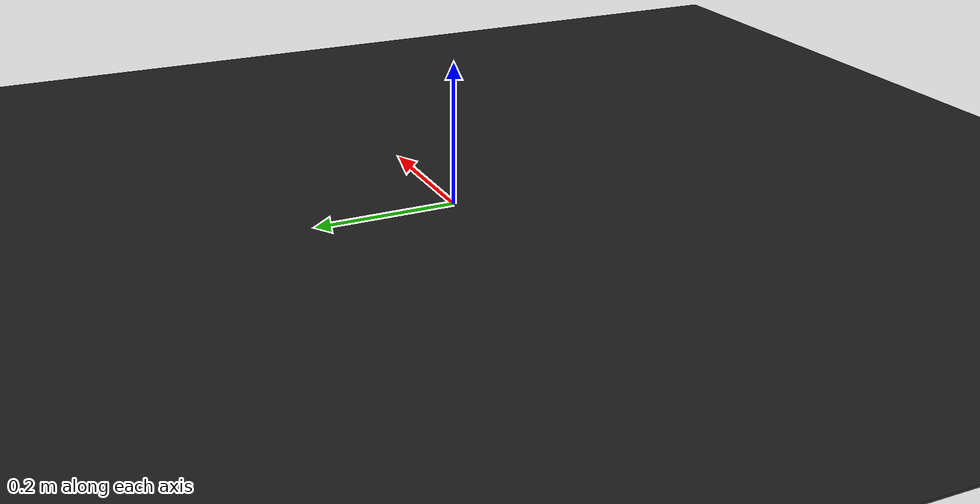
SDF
<?xml version="1.0" ?>
<sdf version="1.5">
  <world name="default">
    <!-- A global light source -->
    <include>
      <uri>model://sun</uri>
    </include>
    <!-- A flight area -->
    <include>
      <uri>model://cage_flight_area</uri>
    </include>
    <!-- A Blue laser image for testing -->
    <include>
      <uri>model://laser_image</uri>
      <pose>0 0 0 0 0 1.5708</pose>
    </include>

    <physics name='default_physics' default='0' type='ode'>
      <gravity>0 0 -9.8066</gravity>
      <ode>
        <solver>
          <type>quick</type>
          <iters>10</iters>
          <sor>1.3</sor>
          <use_dynamic_moi_rescaling>0</use_dynamic_moi_rescaling>
        </solver>
        <constraints>
          <cfm>0</cfm>
          <erp>0.2</erp>
          <contact_max_correcting_vel>100</contact_max_correcting_vel>
          <contact_surface_layer>0.001</contact_surface_layer>
        </constraints>
      </ode>
      <max_step_size>0.004</max_step_size>
      <real_time_factor>1</real_time_factor>
      <real_time_update_rate>250</real_time_update_rate>
      <magnetic_field>6.0e-6 2.3e-5 -4.2e-5</magnetic_field>
    </physics>
  </world>
</sdf>

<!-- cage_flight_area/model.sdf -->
<sdf version="1.5">
  <model name="cage_flight_area">
    <static>true</static>
    <link name="link">
      <collision name="collision">
        <geometry>
          <plane>
            <normal>0 0 1</normal>
            <size>100 100</size>
          </plane>
        </geometry>
        <surface>
          <contact>
             <collide_bitmask>65535</collide_bitmask>
          </contact>
          <friction>
            <ode>
              <mu>100</mu>
              <mu2>50</mu2>
            </ode>
          </friction>
        </surface>
      </collision>
      <visual name="visual">
        <cast_shadows>false</cast_shadows>
        <geometry>
          <plane>
            <normal>0 0 1</normal>
            <size>3 4</size>
          </plane>
        </geometry>
        <material>
          <script>
            <uri>file://media/materials/scripts/gazebo.material</uri>
            <name>Gazebo/Black</name>
          </script>
        </material>
      </visual>
    </link>
  </model>
</sdf>

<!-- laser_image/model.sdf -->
<sdf version="1.5">
  <model name="laser_image">
    <static>true</static>
    <link name="link">
      <visual name="visual">
        <cast_shadows>false</cast_shadows>
        <geometry>
          <plane>
            <normal>0 0 .1</normal>
            <size>1 0.75</size>
          </plane>
        </geometry>
        <material>
          <script>
            <uri>model://laser_image/materials/scripts</uri>
            <uri>model://laser_image/materials/textures</uri>
            <name>laser/blue</name>
          </script>
        </material>
      </visual>
    </link>
  </model>
</sdf>
